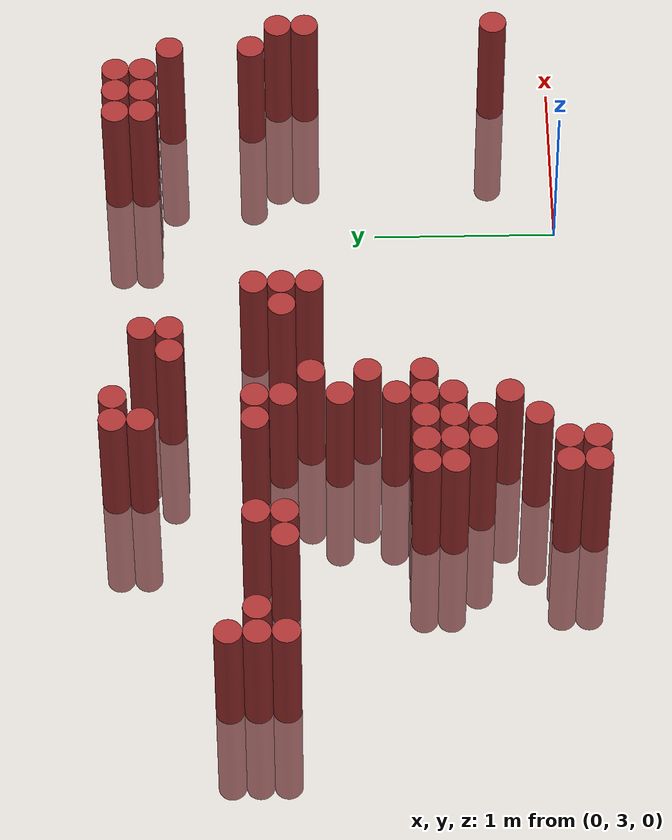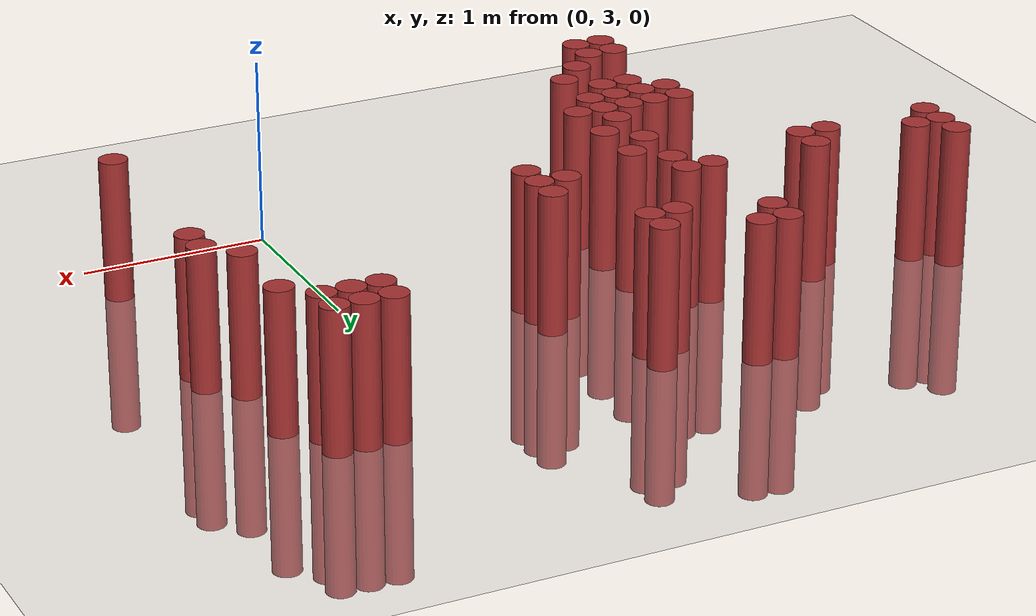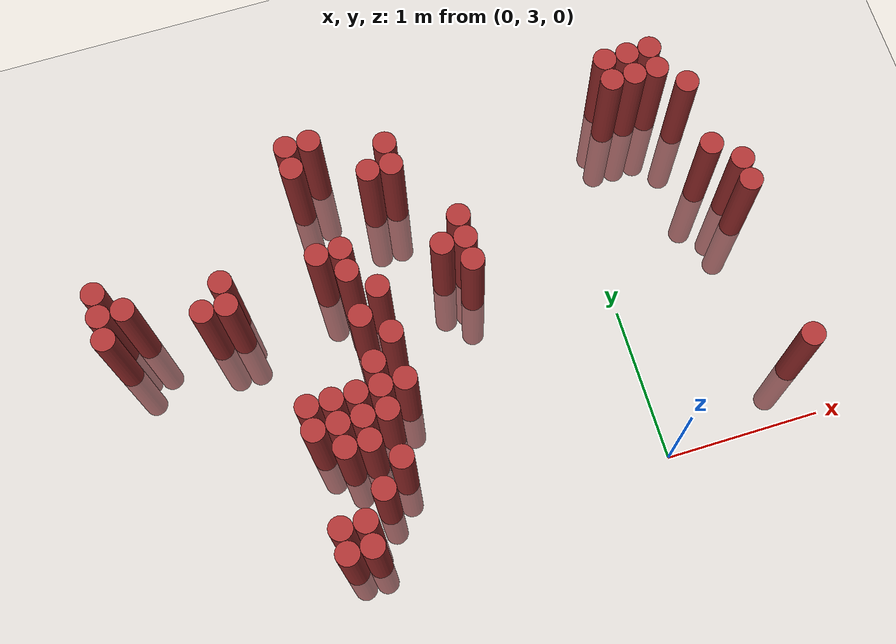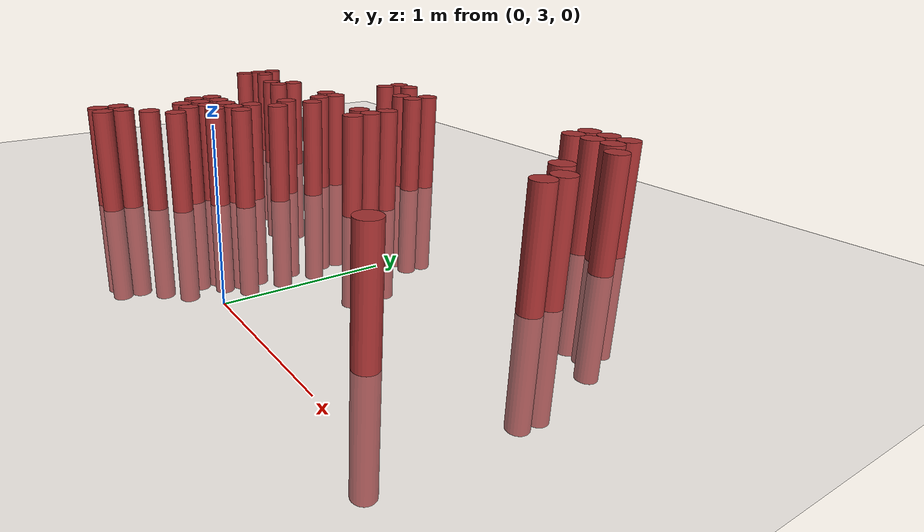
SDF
<sdf version="1.6">
 <world name="default">
  <model name="ground_plane">
   <static>1</static>
   <link name="link">
    <collision name="collision">
     <geometry><plane><normal>0 0 1</normal><size>100 100</size></plane></geometry>
     <surface><friction><ode><mu>100</mu><mu2>50</mu2></ode></friction></surface>
    </collision>
    <visual name="visual">
     <cast_shadows>0</cast_shadows>
     <geometry><plane><normal>0 0 1</normal><size>100 100</size></plane></geometry>
     <material>
      <script><uri>file://media/materials/scripts/gazebo.material</uri><name>Gazebo/Grey</name></script>
     </material>
    </visual>
   </link>
  </model>
  <model name="unit_cylinder_291">
   <static>1</static>
   <pose>-3.125000 4.525000 0.000000 0.000000 0.000000 0.000000</pose>
   <link name="link">
    <inertial>
     <mass>1</mass>
     <inertia><ixx>0.145833</ixx><ixy>0</ixy><ixz>0</ixz><iyy>0.145833</iyy><iyz>0</iyz><izz>0.125</izz></inertia>
    </inertial>
    <collision name="collision">
     <geometry><cylinder><radius>0.075000</radius><length>1.5</length></cylinder></geometry>
    </collision>
    <visual name="visual">
     <geometry><cylinder><radius>0.075000</radius><length>1.5</length></cylinder></geometry>
     <material>
      <ambient>0.648000 0.192000 0.192000 1</ambient>
      <diffuse>0.648000 0.192000 0.192000 1</diffuse>
     </material>
     <material>
      <script><name>Gazebo/Grey</name><uri>file://media/materials/scripts/gazebo.material</uri></script>
     </material>
    </visual>
   </link>
  </model>
  <model name="unit_cylinder_292">
   <static>1</static>
   <pose>-3.125000 4.675000 0.000000 0.000000 0.000000 0.000000</pose>
   <link name="link">
    <inertial>
     <mass>1</mass>
     <inertia><ixx>0.145833</ixx><ixy>0</ixy><ixz>0</ixz><iyy>0.145833</iyy><iyz>0</iyz><izz>0.125</izz></inertia>
    </inertial>
    <collision name="collision">
     <geometry><cylinder><radius>0.075000</radius><length>1.5</length></cylinder></geometry>
    </collision>
    <visual name="visual">
     <geometry><cylinder><radius>0.075000</radius><length>1.5</length></cylinder></geometry>
     <material>
      <ambient>0.648000 0.192000 0.192000 1</ambient>
      <diffuse>0.648000 0.192000 0.192000 1</diffuse>
     </material>
     <material>
      <script><name>Gazebo/Grey</name><uri>file://media/materials/scripts/gazebo.material</uri></script>
     </material>
    </visual>
   </link>
  </model>
  <model name="unit_cylinder_293">
   <static>1</static>
   <pose>-3.125000 4.825000 0.000000 0.000000 0.000000 0.000000</pose>
   <link name="link">
    <inertial>
     <mass>1</mass>
     <inertia><ixx>0.145833</ixx><ixy>0</ixy><ixz>0</ixz><iyy>0.145833</iyy><iyz>0</iyz><izz>0.125</izz></inertia>
    </inertial>
    <collision name="collision">
     <geometry><cylinder><radius>0.075000</radius><length>1.5</length></cylinder></geometry>
    </collision>
    <visual name="visual">
     <geometry><cylinder><radius>0.075000</radius><length>1.5</length></cylinder></geometry>
     <material>
      <ambient>0.648000 0.192000 0.192000 1</ambient>
      <diffuse>0.648000 0.192000 0.192000 1</diffuse>
     </material>
     <material>
      <script><name>Gazebo/Grey</name><uri>file://media/materials/scripts/gazebo.material</uri></script>
     </material>
    </visual>
   </link>
  </model>
  <model name="unit_cylinder_298">
   <static>1</static>
   <pose>-2.975000 4.675000 0.000000 0.000000 0.000000 0.000000</pose>
   <link name="link">
    <inertial>
     <mass>1</mass>
     <inertia><ixx>0.145833</ixx><ixy>0</ixy><ixz>0</ixz><iyy>0.145833</iyy><iyz>0</iyz><izz>0.125</izz></inertia>
    </inertial>
    <collision name="collision">
     <geometry><cylinder><radius>0.075000</radius><length>1.5</length></cylinder></geometry>
    </collision>
    <visual name="visual">
     <geometry><cylinder><radius>0.075000</radius><length>1.5</length></cylinder></geometry>
     <material>
      <ambient>0.648000 0.192000 0.192000 1</ambient>
      <diffuse>0.648000 0.192000 0.192000 1</diffuse>
     </material>
     <material>
      <script><name>Gazebo/Grey</name><uri>file://media/materials/scripts/gazebo.material</uri></script>
     </material>
    </visual>
   </link>
  </model>
  <model name="unit_cylinder_308">
   <static>1</static>
   <pose>-2.525000 4.525000 0.000000 0.000000 0.000000 0.000000</pose>
   <link name="link">
    <inertial>
     <mass>1</mass>
     <inertia><ixx>0.145833</ixx><ixy>0</ixy><ixz>0</ixz><iyy>0.145833</iyy><iyz>0</iyz><izz>0.125</izz></inertia>
    </inertial>
    <collision name="collision">
     <geometry><cylinder><radius>0.075000</radius><length>1.5</length></cylinder></geometry>
    </collision>
    <visual name="visual">
     <geometry><cylinder><radius>0.075000</radius><length>1.5</length></cylinder></geometry>
     <material>
      <ambient>0.648000 0.192000 0.192000 1</ambient>
      <diffuse>0.648000 0.192000 0.192000 1</diffuse>
     </material>
     <material>
      <script><name>Gazebo/Grey</name><uri>file://media/materials/scripts/gazebo.material</uri></script>
     </material>
    </visual>
   </link>
  </model>
  <model name="unit_cylinder_312">
   <static>1</static>
   <pose>-2.375000 4.525000 0.000000 0.000000 0.000000 0.000000</pose>
   <link name="link">
    <inertial>
     <mass>1</mass>
     <inertia><ixx>0.145833</ixx><ixy>0</ixy><ixz>0</ixz><iyy>0.145833</iyy><iyz>0</iyz><izz>0.125</izz></inertia>
    </inertial>
    <collision name="collision">
     <geometry><cylinder><radius>0.075000</radius><length>1.5</length></cylinder></geometry>
    </collision>
    <visual name="visual">
     <geometry><cylinder><radius>0.075000</radius><length>1.5</length></cylinder></geometry>
     <material>
      <ambient>0.648000 0.192000 0.192000 1</ambient>
      <diffuse>0.648000 0.192000 0.192000 1</diffuse>
     </material>
     <material>
      <script><name>Gazebo/Grey</name><uri>file://media/materials/scripts/gazebo.material</uri></script>
     </material>
    </visual>
   </link>
  </model>
  <model name="unit_cylinder_313">
   <static>1</static>
   <pose>-2.375000 4.675000 0.000000 0.000000 0.000000 0.000000</pose>
   <link name="link">
    <inertial>
     <mass>1</mass>
     <inertia><ixx>0.145833</ixx><ixy>0</ixy><ixz>0</ixz><iyy>0.145833</iyy><iyz>0</iyz><izz>0.125</izz></inertia>
    </inertial>
    <collision name="collision">
     <geometry><cylinder><radius>0.075000</radius><length>1.5</length></cylinder></geometry>
    </collision>
    <visual name="visual">
     <geometry><cylinder><radius>0.075000</radius><length>1.5</length></cylinder></geometry>
     <material>
      <ambient>0.648000 0.192000 0.192000 1</ambient>
      <diffuse>0.648000 0.192000 0.192000 1</diffuse>
     </material>
     <material>
      <script><name>Gazebo/Grey</name><uri>file://media/materials/scripts/gazebo.material</uri></script>
     </material>
    </visual>
   </link>
  </model>
  <model name="unit_cylinder_328">
   <static>1</static>
   <pose>-2.075000 2.875000 0.000000 0.000000 0.000000 0.000000</pose>
   <link name="link">
    <inertial>
     <mass>1</mass>
     <inertia><ixx>0.145833</ixx><ixy>0</ixy><ixz>0</ixz><iyy>0.145833</iyy><iyz>0</iyz><izz>0.125</izz></inertia>
    </inertial>
    <collision name="collision">
     <geometry><cylinder><radius>0.075000</radius><length>1.5</length></cylinder></geometry>
    </collision>
    <visual name="visual">
     <geometry><cylinder><radius>0.075000</radius><length>1.5</length></cylinder></geometry>
     <material>
      <ambient>0.648000 0.192000 0.192000 1</ambient>
      <diffuse>0.648000 0.192000 0.192000 1</diffuse>
     </material>
     <material>
      <script><name>Gazebo/Grey</name><uri>file://media/materials/scripts/gazebo.material</uri></script>
     </material>
    </visual>
   </link>
  </model>
  <model name="unit_cylinder_329">
   <static>1</static>
   <pose>-2.075000 3.025000 0.000000 0.000000 0.000000 0.000000</pose>
   <link name="link">
    <inertial>
     <mass>1</mass>
     <inertia><ixx>0.145833</ixx><ixy>0</ixy><ixz>0</ixz><iyy>0.145833</iyy><iyz>0</iyz><izz>0.125</izz></inertia>
    </inertial>
    <collision name="collision">
     <geometry><cylinder><radius>0.075000</radius><length>1.5</length></cylinder></geometry>
    </collision>
    <visual name="visual">
     <geometry><cylinder><radius>0.075000</radius><length>1.5</length></cylinder></geometry>
     <material>
      <ambient>0.648000 0.192000 0.192000 1</ambient>
      <diffuse>0.648000 0.192000 0.192000 1</diffuse>
     </material>
     <material>
      <script><name>Gazebo/Grey</name><uri>file://media/materials/scripts/gazebo.material</uri></script>
     </material>
    </visual>
   </link>
  </model>
  <model name="unit_cylinder_330">
   <static>1</static>
   <pose>-2.075000 3.625000 0.000000 0.000000 0.000000 0.000000</pose>
   <link name="link">
    <inertial>
     <mass>1</mass>
     <inertia><ixx>0.145833</ixx><ixy>0</ixy><ixz>0</ixz><iyy>0.145833</iyy><iyz>0</iyz><izz>0.125</izz></inertia>
    </inertial>
    <collision name="collision">
     <geometry><cylinder><radius>0.075000</radius><length>1.5</length></cylinder></geometry>
    </collision>
    <visual name="visual">
     <geometry><cylinder><radius>0.075000</radius><length>1.5</length></cylinder></geometry>
     <material>
      <ambient>0.648000 0.192000 0.192000 1</ambient>
      <diffuse>0.648000 0.192000 0.192000 1</diffuse>
     </material>
     <material>
      <script><name>Gazebo/Grey</name><uri>file://media/materials/scripts/gazebo.material</uri></script>
     </material>
    </visual>
   </link>
  </model>
  <model name="unit_cylinder_331">
   <static>1</static>
   <pose>-2.075000 3.775000 0.000000 0.000000 0.000000 0.000000</pose>
   <link name="link">
    <inertial>
     <mass>1</mass>
     <inertia><ixx>0.145833</ixx><ixy>0</ixy><ixz>0</ixz><iyy>0.145833</iyy><iyz>0</iyz><izz>0.125</izz></inertia>
    </inertial>
    <collision name="collision">
     <geometry><cylinder><radius>0.075000</radius><length>1.5</length></cylinder></geometry>
    </collision>
    <visual name="visual">
     <geometry><cylinder><radius>0.075000</radius><length>1.5</length></cylinder></geometry>
     <material>
      <ambient>0.648000 0.192000 0.192000 1</ambient>
      <diffuse>0.648000 0.192000 0.192000 1</diffuse>
     </material>
     <material>
      <script><name>Gazebo/Grey</name><uri>file://media/materials/scripts/gazebo.material</uri></script>
     </material>
    </visual>
   </link>
  </model>
  <model name="unit_cylinder_338">
   <static>1</static>
   <pose>-1.925000 2.875000 0.000000 0.000000 0.000000 0.000000</pose>
   <link name="link">
    <inertial>
     <mass>1</mass>
     <inertia><ixx>0.145833</ixx><ixy>0</ixy><ixz>0</ixz><iyy>0.145833</iyy><iyz>0</iyz><izz>0.125</izz></inertia>
    </inertial>
    <collision name="collision">
     <geometry><cylinder><radius>0.075000</radius><length>1.5</length></cylinder></geometry>
    </collision>
    <visual name="visual">
     <geometry><cylinder><radius>0.075000</radius><length>1.5</length></cylinder></geometry>
     <material>
      <ambient>0.648000 0.192000 0.192000 1</ambient>
      <diffuse>0.648000 0.192000 0.192000 1</diffuse>
     </material>
     <material>
      <script><name>Gazebo/Grey</name><uri>file://media/materials/scripts/gazebo.material</uri></script>
     </material>
    </visual>
   </link>
  </model>
  <model name="unit_cylinder_339">
   <static>1</static>
   <pose>-1.925000 3.025000 0.000000 0.000000 0.000000 0.000000</pose>
   <link name="link">
    <inertial>
     <mass>1</mass>
     <inertia><ixx>0.145833</ixx><ixy>0</ixy><ixz>0</ixz><iyy>0.145833</iyy><iyz>0</iyz><izz>0.125</izz></inertia>
    </inertial>
    <collision name="collision">
     <geometry><cylinder><radius>0.075000</radius><length>1.5</length></cylinder></geometry>
    </collision>
    <visual name="visual">
     <geometry><cylinder><radius>0.075000</radius><length>1.5</length></cylinder></geometry>
     <material>
      <ambient>0.648000 0.192000 0.192000 1</ambient>
      <diffuse>0.648000 0.192000 0.192000 1</diffuse>
     </material>
     <material>
      <script><name>Gazebo/Grey</name><uri>file://media/materials/scripts/gazebo.material</uri></script>
     </material>
    </visual>
   </link>
  </model>
  <model name="unit_cylinder_340">
   <static>1</static>
   <pose>-1.925000 3.475000 0.000000 0.000000 0.000000 0.000000</pose>
   <link name="link">
    <inertial>
     <mass>1</mass>
     <inertia><ixx>0.145833</ixx><ixy>0</ixy><ixz>0</ixz><iyy>0.145833</iyy><iyz>0</iyz><izz>0.125</izz></inertia>
    </inertial>
    <collision name="collision">
     <geometry><cylinder><radius>0.075000</radius><length>1.5</length></cylinder></geometry>
    </collision>
    <visual name="visual">
     <geometry><cylinder><radius>0.075000</radius><length>1.5</length></cylinder></geometry>
     <material>
      <ambient>0.648000 0.192000 0.192000 1</ambient>
      <diffuse>0.648000 0.192000 0.192000 1</diffuse>
     </material>
     <material>
      <script><name>Gazebo/Grey</name><uri>file://media/materials/scripts/gazebo.material</uri></script>
     </material>
    </visual>
   </link>
  </model>
  <model name="unit_cylinder_341">
   <static>1</static>
   <pose>-1.925000 3.625000 0.000000 0.000000 0.000000 0.000000</pose>
   <link name="link">
    <inertial>
     <mass>1</mass>
     <inertia><ixx>0.145833</ixx><ixy>0</ixy><ixz>0</ixz><iyy>0.145833</iyy><iyz>0</iyz><izz>0.125</izz></inertia>
    </inertial>
    <collision name="collision">
     <geometry><cylinder><radius>0.075000</radius><length>1.5</length></cylinder></geometry>
    </collision>
    <visual name="visual">
     <geometry><cylinder><radius>0.075000</radius><length>1.5</length></cylinder></geometry>
     <material>
      <ambient>0.648000 0.192000 0.192000 1</ambient>
      <diffuse>0.648000 0.192000 0.192000 1</diffuse>
     </material>
     <material>
      <script><name>Gazebo/Grey</name><uri>file://media/materials/scripts/gazebo.material</uri></script>
     </material>
    </visual>
   </link>
  </model>
  <model name="unit_cylinder_342">
   <static>1</static>
   <pose>-1.925000 3.775000 0.000000 0.000000 0.000000 0.000000</pose>
   <link name="link">
    <inertial>
     <mass>1</mass>
     <inertia><ixx>0.145833</ixx><ixy>0</ixy><ixz>0</ixz><iyy>0.145833</iyy><iyz>0</iyz><izz>0.125</izz></inertia>
    </inertial>
    <collision name="collision">
     <geometry><cylinder><radius>0.075000</radius><length>1.5</length></cylinder></geometry>
    </collision>
    <visual name="visual">
     <geometry><cylinder><radius>0.075000</radius><length>1.5</length></cylinder></geometry>
     <material>
      <ambient>0.648000 0.192000 0.192000 1</ambient>
      <diffuse>0.648000 0.192000 0.192000 1</diffuse>
     </material>
     <material>
      <script><name>Gazebo/Grey</name><uri>file://media/materials/scripts/gazebo.material</uri></script>
     </material>
    </visual>
   </link>
  </model>
  <model name="unit_cylinder_351">
   <static>1</static>
   <pose>-1.775000 3.175000 0.000000 0.000000 0.000000 0.000000</pose>
   <link name="link">
    <inertial>
     <mass>1</mass>
     <inertia><ixx>0.145833</ixx><ixy>0</ixy><ixz>0</ixz><iyy>0.145833</iyy><iyz>0</iyz><izz>0.125</izz></inertia>
    </inertial>
    <collision name="collision">
     <geometry><cylinder><radius>0.075000</radius><length>1.5</length></cylinder></geometry>
    </collision>
    <visual name="visual">
     <geometry><cylinder><radius>0.075000</radius><length>1.5</length></cylinder></geometry>
     <material>
      <ambient>0.648000 0.192000 0.192000 1</ambient>
      <diffuse>0.648000 0.192000 0.192000 1</diffuse>
     </material>
     <material>
      <script><name>Gazebo/Grey</name><uri>file://media/materials/scripts/gazebo.material</uri></script>
     </material>
    </visual>
   </link>
  </model>
  <model name="unit_cylinder_352">
   <static>1</static>
   <pose>-1.775000 3.475000 0.000000 0.000000 0.000000 0.000000</pose>
   <link name="link">
    <inertial>
     <mass>1</mass>
     <inertia><ixx>0.145833</ixx><ixy>0</ixy><ixz>0</ixz><iyy>0.145833</iyy><iyz>0</iyz><izz>0.125</izz></inertia>
    </inertial>
    <collision name="collision">
     <geometry><cylinder><radius>0.075000</radius><length>1.5</length></cylinder></geometry>
    </collision>
    <visual name="visual">
     <geometry><cylinder><radius>0.075000</radius><length>1.5</length></cylinder></geometry>
     <material>
      <ambient>0.648000 0.192000 0.192000 1</ambient>
      <diffuse>0.648000 0.192000 0.192000 1</diffuse>
     </material>
     <material>
      <script><name>Gazebo/Grey</name><uri>file://media/materials/scripts/gazebo.material</uri></script>
     </material>
    </visual>
   </link>
  </model>
  <model name="unit_cylinder_353">
   <static>1</static>
   <pose>-1.775000 3.625000 0.000000 0.000000 0.000000 0.000000</pose>
   <link name="link">
    <inertial>
     <mass>1</mass>
     <inertia><ixx>0.145833</ixx><ixy>0</ixy><ixz>0</ixz><iyy>0.145833</iyy><iyz>0</iyz><izz>0.125</izz></inertia>
    </inertial>
    <collision name="collision">
     <geometry><cylinder><radius>0.075000</radius><length>1.5</length></cylinder></geometry>
    </collision>
    <visual name="visual">
     <geometry><cylinder><radius>0.075000</radius><length>1.5</length></cylinder></geometry>
     <material>
      <ambient>0.648000 0.192000 0.192000 1</ambient>
      <diffuse>0.648000 0.192000 0.192000 1</diffuse>
     </material>
     <material>
      <script><name>Gazebo/Grey</name><uri>file://media/materials/scripts/gazebo.material</uri></script>
     </material>
    </visual>
   </link>
  </model>
  <model name="unit_cylinder_354">
   <static>1</static>
   <pose>-1.775000 3.775000 0.000000 0.000000 0.000000 0.000000</pose>
   <link name="link">
    <inertial>
     <mass>1</mass>
     <inertia><ixx>0.145833</ixx><ixy>0</ixy><ixz>0</ixz><iyy>0.145833</iyy><iyz>0</iyz><izz>0.125</izz></inertia>
    </inertial>
    <collision name="collision">
     <geometry><cylinder><radius>0.075000</radius><length>1.5</length></cylinder></geometry>
    </collision>
    <visual name="visual">
     <geometry><cylinder><radius>0.075000</radius><length>1.5</length></cylinder></geometry>
     <material>
      <ambient>0.648000 0.192000 0.192000 1</ambient>
      <diffuse>0.648000 0.192000 0.192000 1</diffuse>
     </material>
     <material>
      <script><name>Gazebo/Grey</name><uri>file://media/materials/scripts/gazebo.material</uri></script>
     </material>
    </visual>
   </link>
  </model>
  <model name="unit_cylinder_355">
   <static>1</static>
   <pose>-1.775000 4.675000 0.000000 0.000000 0.000000 0.000000</pose>
   <link name="link">
    <inertial>
     <mass>1</mass>
     <inertia><ixx>0.145833</ixx><ixy>0</ixy><ixz>0</ixz><iyy>0.145833</iyy><iyz>0</iyz><izz>0.125</izz></inertia>
    </inertial>
    <collision name="collision">
     <geometry><cylinder><radius>0.075000</radius><length>1.5</length></cylinder></geometry>
    </collision>
    <visual name="visual">
     <geometry><cylinder><radius>0.075000</radius><length>1.5</length></cylinder></geometry>
     <material>
      <ambient>0.648000 0.192000 0.192000 1</ambient>
      <diffuse>0.648000 0.192000 0.192000 1</diffuse>
     </material>
     <material>
      <script><name>Gazebo/Grey</name><uri>file://media/materials/scripts/gazebo.material</uri></script>
     </material>
    </visual>
   </link>
  </model>
  <model name="unit_cylinder_356">
   <static>1</static>
   <pose>-1.775000 5.275000 0.000000 0.000000 0.000000 0.000000</pose>
   <link name="link">
    <inertial>
     <mass>1</mass>
     <inertia><ixx>0.145833</ixx><ixy>0</ixy><ixz>0</ixz><iyy>0.145833</iyy><iyz>0</iyz><izz>0.125</izz></inertia>
    </inertial>
    <collision name="collision">
     <geometry><cylinder><radius>0.075000</radius><length>1.5</length></cylinder></geometry>
    </collision>
    <visual name="visual">
     <geometry><cylinder><radius>0.075000</radius><length>1.5</length></cylinder></geometry>
     <material>
      <ambient>0.648000 0.192000 0.192000 1</ambient>
      <diffuse>0.648000 0.192000 0.192000 1</diffuse>
     </material>
     <material>
      <script><name>Gazebo/Grey</name><uri>file://media/materials/scripts/gazebo.material</uri></script>
     </material>
    </visual>
   </link>
  </model>
  <model name="unit_cylinder_357">
   <static>1</static>
   <pose>-1.775000 5.425000 0.000000 0.000000 0.000000 0.000000</pose>
   <link name="link">
    <inertial>
     <mass>1</mass>
     <inertia><ixx>0.145833</ixx><ixy>0</ixy><ixz>0</ixz><iyy>0.145833</iyy><iyz>0</iyz><izz>0.125</izz></inertia>
    </inertial>
    <collision name="collision">
     <geometry><cylinder><radius>0.075000</radius><length>1.5</length></cylinder></geometry>
    </collision>
    <visual name="visual">
     <geometry><cylinder><radius>0.075000</radius><length>1.5</length></cylinder></geometry>
     <material>
      <ambient>0.648000 0.192000 0.192000 1</ambient>
      <diffuse>0.648000 0.192000 0.192000 1</diffuse>
     </material>
     <material>
      <script><name>Gazebo/Grey</name><uri>file://media/materials/scripts/gazebo.material</uri></script>
     </material>
    </visual>
   </link>
  </model>
  <model name="unit_cylinder_360">
   <static>1</static>
   <pose>-1.625000 3.325000 0.000000 0.000000 0.000000 0.000000</pose>
   <link name="link">
    <inertial>
     <mass>1</mass>
     <inertia><ixx>0.145833</ixx><ixy>0</ixy><ixz>0</ixz><iyy>0.145833</iyy><iyz>0</iyz><izz>0.125</izz></inertia>
    </inertial>
    <collision name="collision">
     <geometry><cylinder><radius>0.075000</radius><length>1.5</length></cylinder></geometry>
    </collision>
    <visual name="visual">
     <geometry><cylinder><radius>0.075000</radius><length>1.5</length></cylinder></geometry>
     <material>
      <ambient>0.648000 0.192000 0.192000 1</ambient>
      <diffuse>0.648000 0.192000 0.192000 1</diffuse>
     </material>
     <material>
      <script><name>Gazebo/Grey</name><uri>file://media/materials/scripts/gazebo.material</uri></script>
     </material>
    </visual>
   </link>
  </model>
  <model name="unit_cylinder_361">
   <static>1</static>
   <pose>-1.625000 3.625000 0.000000 0.000000 0.000000 0.000000</pose>
   <link name="link">
    <inertial>
     <mass>1</mass>
     <inertia><ixx>0.145833</ixx><ixy>0</ixy><ixz>0</ixz><iyy>0.145833</iyy><iyz>0</iyz><izz>0.125</izz></inertia>
    </inertial>
    <collision name="collision">
     <geometry><cylinder><radius>0.075000</radius><length>1.5</length></cylinder></geometry>
    </collision>
    <visual name="visual">
     <geometry><cylinder><radius>0.075000</radius><length>1.5</length></cylinder></geometry>
     <material>
      <ambient>0.648000 0.192000 0.192000 1</ambient>
      <diffuse>0.648000 0.192000 0.192000 1</diffuse>
     </material>
     <material>
      <script><name>Gazebo/Grey</name><uri>file://media/materials/scripts/gazebo.material</uri></script>
     </material>
    </visual>
   </link>
  </model>
  <model name="unit_cylinder_362">
   <static>1</static>
   <pose>-1.625000 3.775000 0.000000 0.000000 0.000000 0.000000</pose>
   <link name="link">
    <inertial>
     <mass>1</mass>
     <inertia><ixx>0.145833</ixx><ixy>0</ixy><ixz>0</ixz><iyy>0.145833</iyy><iyz>0</iyz><izz>0.125</izz></inertia>
    </inertial>
    <collision name="collision">
     <geometry><cylinder><radius>0.075000</radius><length>1.5</length></cylinder></geometry>
    </collision>
    <visual name="visual">
     <geometry><cylinder><radius>0.075000</radius><length>1.5</length></cylinder></geometry>
     <material>
      <ambient>0.648000 0.192000 0.192000 1</ambient>
      <diffuse>0.648000 0.192000 0.192000 1</diffuse>
     </material>
     <material>
      <script><name>Gazebo/Grey</name><uri>file://media/materials/scripts/gazebo.material</uri></script>
     </material>
    </visual>
   </link>
  </model>
  <model name="unit_cylinder_363">
   <static>1</static>
   <pose>-1.625000 3.925000 0.000000 0.000000 0.000000 0.000000</pose>
   <link name="link">
    <inertial>
     <mass>1</mass>
     <inertia><ixx>0.145833</ixx><ixy>0</ixy><ixz>0</ixz><iyy>0.145833</iyy><iyz>0</iyz><izz>0.125</izz></inertia>
    </inertial>
    <collision name="collision">
     <geometry><cylinder><radius>0.075000</radius><length>1.5</length></cylinder></geometry>
    </collision>
    <visual name="visual">
     <geometry><cylinder><radius>0.075000</radius><length>1.5</length></cylinder></geometry>
     <material>
      <ambient>0.648000 0.192000 0.192000 1</ambient>
      <diffuse>0.648000 0.192000 0.192000 1</diffuse>
     </material>
     <material>
      <script><name>Gazebo/Grey</name><uri>file://media/materials/scripts/gazebo.material</uri></script>
     </material>
    </visual>
   </link>
  </model>
  <model name="unit_cylinder_364">
   <static>1</static>
   <pose>-1.625000 4.225000 0.000000 0.000000 0.000000 0.000000</pose>
   <link name="link">
    <inertial>
     <mass>1</mass>
     <inertia><ixx>0.145833</ixx><ixy>0</ixy><ixz>0</ixz><iyy>0.145833</iyy><iyz>0</iyz><izz>0.125</izz></inertia>
    </inertial>
    <collision name="collision">
     <geometry><cylinder><radius>0.075000</radius><length>1.5</length></cylinder></geometry>
    </collision>
    <visual name="visual">
     <geometry><cylinder><radius>0.075000</radius><length>1.5</length></cylinder></geometry>
     <material>
      <ambient>0.648000 0.192000 0.192000 1</ambient>
      <diffuse>0.648000 0.192000 0.192000 1</diffuse>
     </material>
     <material>
      <script><name>Gazebo/Grey</name><uri>file://media/materials/scripts/gazebo.material</uri></script>
     </material>
    </visual>
   </link>
  </model>
  <model name="unit_cylinder_365">
   <static>1</static>
   <pose>-1.625000 4.525000 0.000000 0.000000 0.000000 0.000000</pose>
   <link name="link">
    <inertial>
     <mass>1</mass>
     <inertia><ixx>0.145833</ixx><ixy>0</ixy><ixz>0</ixz><iyy>0.145833</iyy><iyz>0</iyz><izz>0.125</izz></inertia>
    </inertial>
    <collision name="collision">
     <geometry><cylinder><radius>0.075000</radius><length>1.5</length></cylinder></geometry>
    </collision>
    <visual name="visual">
     <geometry><cylinder><radius>0.075000</radius><length>1.5</length></cylinder></geometry>
     <material>
      <ambient>0.648000 0.192000 0.192000 1</ambient>
      <diffuse>0.648000 0.192000 0.192000 1</diffuse>
     </material>
     <material>
      <script><name>Gazebo/Grey</name><uri>file://media/materials/scripts/gazebo.material</uri></script>
     </material>
    </visual>
   </link>
  </model>
  <model name="unit_cylinder_366">
   <static>1</static>
   <pose>-1.625000 4.675000 0.000000 0.000000 0.000000 0.000000</pose>
   <link name="link">
    <inertial>
     <mass>1</mass>
     <inertia><ixx>0.145833</ixx><ixy>0</ixy><ixz>0</ixz><iyy>0.145833</iyy><iyz>0</iyz><izz>0.125</izz></inertia>
    </inertial>
    <collision name="collision">
     <geometry><cylinder><radius>0.075000</radius><length>1.5</length></cylinder></geometry>
    </collision>
    <visual name="visual">
     <geometry><cylinder><radius>0.075000</radius><length>1.5</length></cylinder></geometry>
     <material>
      <ambient>0.648000 0.192000 0.192000 1</ambient>
      <diffuse>0.648000 0.192000 0.192000 1</diffuse>
     </material>
     <material>
      <script><name>Gazebo/Grey</name><uri>file://media/materials/scripts/gazebo.material</uri></script>
     </material>
    </visual>
   </link>
  </model>
  <model name="unit_cylinder_367">
   <static>1</static>
   <pose>-1.625000 5.425000 0.000000 0.000000 0.000000 0.000000</pose>
   <link name="link">
    <inertial>
     <mass>1</mass>
     <inertia><ixx>0.145833</ixx><ixy>0</ixy><ixz>0</ixz><iyy>0.145833</iyy><iyz>0</iyz><izz>0.125</izz></inertia>
    </inertial>
    <collision name="collision">
     <geometry><cylinder><radius>0.075000</radius><length>1.5</length></cylinder></geometry>
    </collision>
    <visual name="visual">
     <geometry><cylinder><radius>0.075000</radius><length>1.5</length></cylinder></geometry>
     <material>
      <ambient>0.648000 0.192000 0.192000 1</ambient>
      <diffuse>0.648000 0.192000 0.192000 1</diffuse>
     </material>
     <material>
      <script><name>Gazebo/Grey</name><uri>file://media/materials/scripts/gazebo.material</uri></script>
     </material>
    </visual>
   </link>
  </model>
  <model name="unit_cylinder_368">
   <static>1</static>
   <pose>-1.475000 3.775000 0.000000 0.000000 0.000000 0.000000</pose>
   <link name="link">
    <inertial>
     <mass>1</mass>
     <inertia><ixx>0.145833</ixx><ixy>0</ixy><ixz>0</ixz><iyy>0.145833</iyy><iyz>0</iyz><izz>0.125</izz></inertia>
    </inertial>
    <collision name="collision">
     <geometry><cylinder><radius>0.075000</radius><length>1.5</length></cylinder></geometry>
    </collision>
    <visual name="visual">
     <geometry><cylinder><radius>0.075000</radius><length>1.5</length></cylinder></geometry>
     <material>
      <ambient>0.648000 0.192000 0.192000 1</ambient>
      <diffuse>0.648000 0.192000 0.192000 1</diffuse>
     </material>
     <material>
      <script><name>Gazebo/Grey</name><uri>file://media/materials/scripts/gazebo.material</uri></script>
     </material>
    </visual>
   </link>
  </model>
  <model name="unit_cylinder_369">
   <static>1</static>
   <pose>-1.475000 4.075000 0.000000 0.000000 0.000000 0.000000</pose>
   <link name="link">
    <inertial>
     <mass>1</mass>
     <inertia><ixx>0.145833</ixx><ixy>0</ixy><ixz>0</ixz><iyy>0.145833</iyy><iyz>0</iyz><izz>0.125</izz></inertia>
    </inertial>
    <collision name="collision">
     <geometry><cylinder><radius>0.075000</radius><length>1.5</length></cylinder></geometry>
    </collision>
    <visual name="visual">
     <geometry><cylinder><radius>0.075000</radius><length>1.5</length></cylinder></geometry>
     <material>
      <ambient>0.648000 0.192000 0.192000 1</ambient>
      <diffuse>0.648000 0.192000 0.192000 1</diffuse>
     </material>
     <material>
      <script><name>Gazebo/Grey</name><uri>file://media/materials/scripts/gazebo.material</uri></script>
     </material>
    </visual>
   </link>
  </model>
  <model name="unit_cylinder_370">
   <static>1</static>
   <pose>-1.475000 4.375000 0.000000 0.000000 0.000000 0.000000</pose>
   <link name="link">
    <inertial>
     <mass>1</mass>
     <inertia><ixx>0.145833</ixx><ixy>0</ixy><ixz>0</ixz><iyy>0.145833</iyy><iyz>0</iyz><izz>0.125</izz></inertia>
    </inertial>
    <collision name="collision">
     <geometry><cylinder><radius>0.075000</radius><length>1.5</length></cylinder></geometry>
    </collision>
    <visual name="visual">
     <geometry><cylinder><radius>0.075000</radius><length>1.5</length></cylinder></geometry>
     <material>
      <ambient>0.648000 0.192000 0.192000 1</ambient>
      <diffuse>0.648000 0.192000 0.192000 1</diffuse>
     </material>
     <material>
      <script><name>Gazebo/Grey</name><uri>file://media/materials/scripts/gazebo.material</uri></script>
     </material>
    </visual>
   </link>
  </model>
  <model name="unit_cylinder_373">
   <static>1</static>
   <pose>-1.325000 5.125000 0.000000 0.000000 0.000000 0.000000</pose>
   <link name="link">
    <inertial>
     <mass>1</mass>
     <inertia><ixx>0.145833</ixx><ixy>0</ixy><ixz>0</ixz><iyy>0.145833</iyy><iyz>0</iyz><izz>0.125</izz></inertia>
    </inertial>
    <collision name="collision">
     <geometry><cylinder><radius>0.075000</radius><length>1.5</length></cylinder></geometry>
    </collision>
    <visual name="visual">
     <geometry><cylinder><radius>0.075000</radius><length>1.5</length></cylinder></geometry>
     <material>
      <ambient>0.648000 0.192000 0.192000 1</ambient>
      <diffuse>0.648000 0.192000 0.192000 1</diffuse>
     </material>
     <material>
      <script><name>Gazebo/Grey</name><uri>file://media/materials/scripts/gazebo.material</uri></script>
     </material>
    </visual>
   </link>
  </model>
  <model name="unit_cylinder_376">
   <static>1</static>
   <pose>-1.175000 5.125000 0.000000 0.000000 0.000000 0.000000</pose>
   <link name="link">
    <inertial>
     <mass>1</mass>
     <inertia><ixx>0.145833</ixx><ixy>0</ixy><ixz>0</ixz><iyy>0.145833</iyy><iyz>0</iyz><izz>0.125</izz></inertia>
    </inertial>
    <collision name="collision">
     <geometry><cylinder><radius>0.075000</radius><length>1.5</length></cylinder></geometry>
    </collision>
    <visual name="visual">
     <geometry><cylinder><radius>0.075000</radius><length>1.5</length></cylinder></geometry>
     <material>
      <ambient>0.648000 0.192000 0.192000 1</ambient>
      <diffuse>0.648000 0.192000 0.192000 1</diffuse>
     </material>
     <material>
      <script><name>Gazebo/Grey</name><uri>file://media/materials/scripts/gazebo.material</uri></script>
     </material>
    </visual>
   </link>
  </model>
  <model name="unit_cylinder_377">
   <static>1</static>
   <pose>-1.175000 5.275000 0.000000 0.000000 0.000000 0.000000</pose>
   <link name="link">
    <inertial>
     <mass>1</mass>
     <inertia><ixx>0.145833</ixx><ixy>0</ixy><ixz>0</ixz><iyy>0.145833</iyy><iyz>0</iyz><izz>0.125</izz></inertia>
    </inertial>
    <collision name="collision">
     <geometry><cylinder><radius>0.075000</radius><length>1.5</length></cylinder></geometry>
    </collision>
    <visual name="visual">
     <geometry><cylinder><radius>0.075000</radius><length>1.5</length></cylinder></geometry>
     <material>
      <ambient>0.648000 0.192000 0.192000 1</ambient>
      <diffuse>0.648000 0.192000 0.192000 1</diffuse>
     </material>
     <material>
      <script><name>Gazebo/Grey</name><uri>file://media/materials/scripts/gazebo.material</uri></script>
     </material>
    </visual>
   </link>
  </model>
  <model name="unit_cylinder_378">
   <static>1</static>
   <pose>-1.025000 4.525000 0.000000 0.000000 0.000000 0.000000</pose>
   <link name="link">
    <inertial>
     <mass>1</mass>
     <inertia><ixx>0.145833</ixx><ixy>0</ixy><ixz>0</ixz><iyy>0.145833</iyy><iyz>0</iyz><izz>0.125</izz></inertia>
    </inertial>
    <collision name="collision">
     <geometry><cylinder><radius>0.075000</radius><length>1.5</length></cylinder></geometry>
    </collision>
    <visual name="visual">
     <geometry><cylinder><radius>0.075000</radius><length>1.5</length></cylinder></geometry>
     <material>
      <ambient>0.648000 0.192000 0.192000 1</ambient>
      <diffuse>0.648000 0.192000 0.192000 1</diffuse>
     </material>
     <material>
      <script><name>Gazebo/Grey</name><uri>file://media/materials/scripts/gazebo.material</uri></script>
     </material>
    </visual>
   </link>
  </model>
  <model name="unit_cylinder_379">
   <static>1</static>
   <pose>-0.875000 4.375000 0.000000 0.000000 0.000000 0.000000</pose>
   <link name="link">
    <inertial>
     <mass>1</mass>
     <inertia><ixx>0.145833</ixx><ixy>0</ixy><ixz>0</ixz><iyy>0.145833</iyy><iyz>0</iyz><izz>0.125</izz></inertia>
    </inertial>
    <collision name="collision">
     <geometry><cylinder><radius>0.075000</radius><length>1.5</length></cylinder></geometry>
    </collision>
    <visual name="visual">
     <geometry><cylinder><radius>0.075000</radius><length>1.5</length></cylinder></geometry>
     <material>
      <ambient>0.648000 0.192000 0.192000 1</ambient>
      <diffuse>0.648000 0.192000 0.192000 1</diffuse>
     </material>
     <material>
      <script><name>Gazebo/Grey</name><uri>file://media/materials/scripts/gazebo.material</uri></script>
     </material>
    </visual>
   </link>
  </model>
  <model name="unit_cylinder_380">
   <static>1</static>
   <pose>-0.875000 4.525000 0.000000 0.000000 0.000000 0.000000</pose>
   <link name="link">
    <inertial>
     <mass>1</mass>
     <inertia><ixx>0.145833</ixx><ixy>0</ixy><ixz>0</ixz><iyy>0.145833</iyy><iyz>0</iyz><izz>0.125</izz></inertia>
    </inertial>
    <collision name="collision">
     <geometry><cylinder><radius>0.075000</radius><length>1.5</length></cylinder></geometry>
    </collision>
    <visual name="visual">
     <geometry><cylinder><radius>0.075000</radius><length>1.5</length></cylinder></geometry>
     <material>
      <ambient>0.648000 0.192000 0.192000 1</ambient>
      <diffuse>0.648000 0.192000 0.192000 1</diffuse>
     </material>
     <material>
      <script><name>Gazebo/Grey</name><uri>file://media/materials/scripts/gazebo.material</uri></script>
     </material>
    </visual>
   </link>
  </model>
  <model name="unit_cylinder_381">
   <static>1</static>
   <pose>-0.875000 4.675000 0.000000 0.000000 0.000000 0.000000</pose>
   <link name="link">
    <inertial>
     <mass>1</mass>
     <inertia><ixx>0.145833</ixx><ixy>0</ixy><ixz>0</ixz><iyy>0.145833</iyy><iyz>0</iyz><izz>0.125</izz></inertia>
    </inertial>
    <collision name="collision">
     <geometry><cylinder><radius>0.075000</radius><length>1.5</length></cylinder></geometry>
    </collision>
    <visual name="visual">
     <geometry><cylinder><radius>0.075000</radius><length>1.5</length></cylinder></geometry>
     <material>
      <ambient>0.648000 0.192000 0.192000 1</ambient>
      <diffuse>0.648000 0.192000 0.192000 1</diffuse>
     </material>
     <material>
      <script><name>Gazebo/Grey</name><uri>file://media/materials/scripts/gazebo.material</uri></script>
     </material>
    </visual>
   </link>
  </model>
  <model name="unit_cylinder_397">
   <static>1</static>
   <pose>0.325000 5.275000 0.000000 0.000000 0.000000 0.000000</pose>
   <link name="link">
    <inertial>
     <mass>1</mass>
     <inertia><ixx>0.145833</ixx><ixy>0</ixy><ixz>0</ixz><iyy>0.145833</iyy><iyz>0</iyz><izz>0.125</izz></inertia>
    </inertial>
    <collision name="collision">
     <geometry><cylinder><radius>0.075000</radius><length>1.5</length></cylinder></geometry>
    </collision>
    <visual name="visual">
     <geometry><cylinder><radius>0.075000</radius><length>1.5</length></cylinder></geometry>
     <material>
      <ambient>0.648000 0.192000 0.192000 1</ambient>
      <diffuse>0.648000 0.192000 0.192000 1</diffuse>
     </material>
     <material>
      <script><name>Gazebo/Grey</name><uri>file://media/materials/scripts/gazebo.material</uri></script>
     </material>
    </visual>
   </link>
  </model>
  <model name="unit_cylinder_398">
   <static>1</static>
   <pose>0.325000 5.425000 0.000000 0.000000 0.000000 0.000000</pose>
   <link name="link">
    <inertial>
     <mass>1</mass>
     <inertia><ixx>0.145833</ixx><ixy>0</ixy><ixz>0</ixz><iyy>0.145833</iyy><iyz>0</iyz><izz>0.125</izz></inertia>
    </inertial>
    <collision name="collision">
     <geometry><cylinder><radius>0.075000</radius><length>1.5</length></cylinder></geometry>
    </collision>
    <visual name="visual">
     <geometry><cylinder><radius>0.075000</radius><length>1.5</length></cylinder></geometry>
     <material>
      <ambient>0.648000 0.192000 0.192000 1</ambient>
      <diffuse>0.648000 0.192000 0.192000 1</diffuse>
     </material>
     <material>
      <script><name>Gazebo/Grey</name><uri>file://media/materials/scripts/gazebo.material</uri></script>
     </material>
    </visual>
   </link>
  </model>
  <model name="unit_cylinder_401">
   <static>1</static>
   <pose>0.475000 5.275000 0.000000 0.000000 0.000000 0.000000</pose>
   <link name="link">
    <inertial>
     <mass>1</mass>
     <inertia><ixx>0.145833</ixx><ixy>0</ixy><ixz>0</ixz><iyy>0.145833</iyy><iyz>0</iyz><izz>0.125</izz></inertia>
    </inertial>
    <collision name="collision">
     <geometry><cylinder><radius>0.075000</radius><length>1.5</length></cylinder></geometry>
    </collision>
    <visual name="visual">
     <geometry><cylinder><radius>0.075000</radius><length>1.5</length></cylinder></geometry>
     <material>
      <ambient>0.648000 0.192000 0.192000 1</ambient>
      <diffuse>0.648000 0.192000 0.192000 1</diffuse>
     </material>
     <material>
      <script><name>Gazebo/Grey</name><uri>file://media/materials/scripts/gazebo.material</uri></script>
     </material>
    </visual>
   </link>
  </model>
  <model name="unit_cylinder_402">
   <static>1</static>
   <pose>0.475000 5.425000 0.000000 0.000000 0.000000 0.000000</pose>
   <link name="link">
    <inertial>
     <mass>1</mass>
     <inertia><ixx>0.145833</ixx><ixy>0</ixy><ixz>0</ixz><iyy>0.145833</iyy><iyz>0</iyz><izz>0.125</izz></inertia>
    </inertial>
    <collision name="collision">
     <geometry><cylinder><radius>0.075000</radius><length>1.5</length></cylinder></geometry>
    </collision>
    <visual name="visual">
     <geometry><cylinder><radius>0.075000</radius><length>1.5</length></cylinder></geometry>
     <material>
      <ambient>0.648000 0.192000 0.192000 1</ambient>
      <diffuse>0.648000 0.192000 0.192000 1</diffuse>
     </material>
     <material>
      <script><name>Gazebo/Grey</name><uri>file://media/materials/scripts/gazebo.material</uri></script>
     </material>
    </visual>
   </link>
  </model>
  <model name="unit_cylinder_404">
   <static>1</static>
   <pose>0.625000 5.275000 0.000000 0.000000 0.000000 0.000000</pose>
   <link name="link">
    <inertial>
     <mass>1</mass>
     <inertia><ixx>0.145833</ixx><ixy>0</ixy><ixz>0</ixz><iyy>0.145833</iyy><iyz>0</iyz><izz>0.125</izz></inertia>
    </inertial>
    <collision name="collision">
     <geometry><cylinder><radius>0.075000</radius><length>1.5</length></cylinder></geometry>
    </collision>
    <visual name="visual">
     <geometry><cylinder><radius>0.075000</radius><length>1.5</length></cylinder></geometry>
     <material>
      <ambient>0.648000 0.192000 0.192000 1</ambient>
      <diffuse>0.648000 0.192000 0.192000 1</diffuse>
     </material>
     <material>
      <script><name>Gazebo/Grey</name><uri>file://media/materials/scripts/gazebo.material</uri></script>
     </material>
    </visual>
   </link>
  </model>
  <model name="unit_cylinder_405">
   <static>1</static>
   <pose>0.625000 5.425000 0.000000 0.000000 0.000000 0.000000</pose>
   <link name="link">
    <inertial>
     <mass>1</mass>
     <inertia><ixx>0.145833</ixx><ixy>0</ixy><ixz>0</ixz><iyy>0.145833</iyy><iyz>0</iyz><izz>0.125</izz></inertia>
    </inertial>
    <collision name="collision">
     <geometry><cylinder><radius>0.075000</radius><length>1.5</length></cylinder></geometry>
    </collision>
    <visual name="visual">
     <geometry><cylinder><radius>0.075000</radius><length>1.5</length></cylinder></geometry>
     <material>
      <ambient>0.648000 0.192000 0.192000 1</ambient>
      <diffuse>0.648000 0.192000 0.192000 1</diffuse>
     </material>
     <material>
      <script><name>Gazebo/Grey</name><uri>file://media/materials/scripts/gazebo.material</uri></script>
     </material>
    </visual>
   </link>
  </model>
  <model name="unit_cylinder_406">
   <static>1</static>
   <pose>0.775000 4.675000 0.000000 0.000000 0.000000 0.000000</pose>
   <link name="link">
    <inertial>
     <mass>1</mass>
     <inertia><ixx>0.145833</ixx><ixy>0</ixy><ixz>0</ixz><iyy>0.145833</iyy><iyz>0</iyz><izz>0.125</izz></inertia>
    </inertial>
    <collision name="collision">
     <geometry><cylinder><radius>0.075000</radius><length>1.5</length></cylinder></geometry>
    </collision>
    <visual name="visual">
     <geometry><cylinder><radius>0.075000</radius><length>1.5</length></cylinder></geometry>
     <material>
      <ambient>0.648000 0.192000 0.192000 1</ambient>
      <diffuse>0.648000 0.192000 0.192000 1</diffuse>
     </material>
     <material>
      <script><name>Gazebo/Grey</name><uri>file://media/materials/scripts/gazebo.material</uri></script>
     </material>
    </visual>
   </link>
  </model>
  <model name="unit_cylinder_407">
   <static>1</static>
   <pose>0.775000 5.125000 0.000000 0.000000 0.000000 0.000000</pose>
   <link name="link">
    <inertial>
     <mass>1</mass>
     <inertia><ixx>0.145833</ixx><ixy>0</ixy><ixz>0</ixz><iyy>0.145833</iyy><iyz>0</iyz><izz>0.125</izz></inertia>
    </inertial>
    <collision name="collision">
     <geometry><cylinder><radius>0.075000</radius><length>1.5</length></cylinder></geometry>
    </collision>
    <visual name="visual">
     <geometry><cylinder><radius>0.075000</radius><length>1.5</length></cylinder></geometry>
     <material>
      <ambient>0.648000 0.192000 0.192000 1</ambient>
      <diffuse>0.648000 0.192000 0.192000 1</diffuse>
     </material>
     <material>
      <script><name>Gazebo/Grey</name><uri>file://media/materials/scripts/gazebo.material</uri></script>
     </material>
    </visual>
   </link>
  </model>
  <model name="unit_cylinder_412">
   <static>1</static>
   <pose>0.925000 3.325000 0.000000 0.000000 0.000000 0.000000</pose>
   <link name="link">
    <inertial>
     <mass>1</mass>
     <inertia><ixx>0.145833</ixx><ixy>0</ixy><ixz>0</ixz><iyy>0.145833</iyy><iyz>0</iyz><izz>0.125</izz></inertia>
    </inertial>
    <collision name="collision">
     <geometry><cylinder><radius>0.075000</radius><length>1.5</length></cylinder></geometry>
    </collision>
    <visual name="visual">
     <geometry><cylinder><radius>0.075000</radius><length>1.5</length></cylinder></geometry>
     <material>
      <ambient>0.648000 0.192000 0.192000 1</ambient>
      <diffuse>0.648000 0.192000 0.192000 1</diffuse>
     </material>
     <material>
      <script><name>Gazebo/Grey</name><uri>file://media/materials/scripts/gazebo.material</uri></script>
     </material>
    </visual>
   </link>
  </model>
  <model name="unit_cylinder_413">
   <static>1</static>
   <pose>0.925000 4.375000 0.000000 0.000000 0.000000 0.000000</pose>
   <link name="link">
    <inertial>
     <mass>1</mass>
     <inertia><ixx>0.145833</ixx><ixy>0</ixy><ixz>0</ixz><iyy>0.145833</iyy><iyz>0</iyz><izz>0.125</izz></inertia>
    </inertial>
    <collision name="collision">
     <geometry><cylinder><radius>0.075000</radius><length>1.5</length></cylinder></geometry>
    </collision>
    <visual name="visual">
     <geometry><cylinder><radius>0.075000</radius><length>1.5</length></cylinder></geometry>
     <material>
      <ambient>0.648000 0.192000 0.192000 1</ambient>
      <diffuse>0.648000 0.192000 0.192000 1</diffuse>
     </material>
     <material>
      <script><name>Gazebo/Grey</name><uri>file://media/materials/scripts/gazebo.material</uri></script>
     </material>
    </visual>
   </link>
  </model>
  <model name="unit_cylinder_414">
   <static>1</static>
   <pose>0.925000 4.525000 0.000000 0.000000 0.000000 0.000000</pose>
   <link name="link">
    <inertial>
     <mass>1</mass>
     <inertia><ixx>0.145833</ixx><ixy>0</ixy><ixz>0</ixz><iyy>0.145833</iyy><iyz>0</iyz><izz>0.125</izz></inertia>
    </inertial>
    <collision name="collision">
     <geometry><cylinder><radius>0.075000</radius><length>1.5</length></cylinder></geometry>
    </collision>
    <visual name="visual">
     <geometry><cylinder><radius>0.075000</radius><length>1.5</length></cylinder></geometry>
     <material>
      <ambient>0.648000 0.192000 0.192000 1</ambient>
      <diffuse>0.648000 0.192000 0.192000 1</diffuse>
     </material>
     <material>
      <script><name>Gazebo/Grey</name><uri>file://media/materials/scripts/gazebo.material</uri></script>
     </material>
    </visual>
   </link>
  </model>
 </world>
</sdf>
